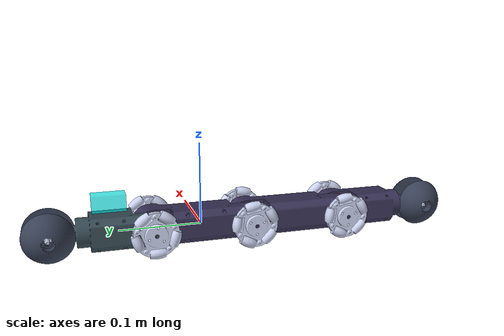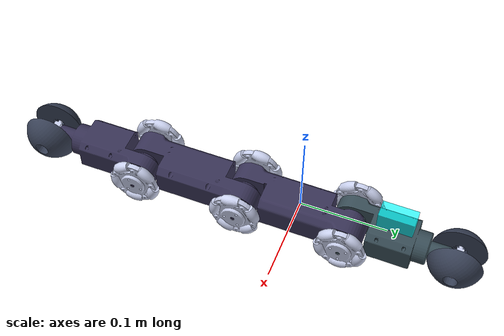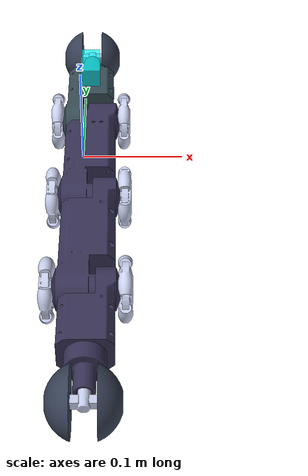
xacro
<?xml version="1.0" encoding="utf-8"?>

<robot xmlns:xacro="http://wiki.ros.org/xacro" name="pir-b-001">

  <!-- Include the robot kinematic and dynamic description file -->
  <xacro:include filename="PIR-B-ASSY-001-description.xacro"/>

  <!-- Include the camera -->
  <xacro:include filename="camera.xacro"/>

  <!-- Include the gazebo plugins file -->
  <xacro:include filename="PIR-B-ASSY-001-gazebo.xacro"/>

</robot>

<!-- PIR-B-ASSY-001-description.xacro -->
<pir-b-001 xmlns:xacro="http://wiki.ros.org/xacro" name="pir-b-001">

  <link name="base_footprint" />

  <link
    name="base_link">
    <inertial>
      <origin
        xyz="0.00464580299161508 -0.00157654781508274 1.29496402264534E-08"
        rpy="0 0 0" />
      <mass
        value="0.170619611327794" />
      <inertia
        ixx="8.87834221142331E-05"
        ixy="7.79394477944035E-08"
        ixz="9.12723410794375E-12"
        iyy="3.69411152186283E-05"
        iyz="-1.02575311402571E-11"
        izz="7.54787982319766E-05" />
    </inertial>
    <visual>
      <origin
        xyz="0 0 0"
        rpy="0 0 0" />
      <geometry>
        <mesh
          filename="package://pir-b-001/meshes/base_link.STL" />
      </geometry>
      <material
        name="">
        <color
          rgba="0.2156862745098 0.19607843137255 0.33333333333333 1" />
      </material>
    </visual>
    <collision>
      <origin
        xyz="0 0 0"
        rpy="0 0 0" />
      <geometry>
        <mesh
          filename="package://pir-b-001/meshes/base_link.STL" />
      </geometry>
    </collision>
  </link>
  <joint name="base_joint" type="fixed">
    <parent link="base_footprint"/>
    <child link="base_link"/>
  </joint>
  <link
    name="right_Link">
    <inertial>
      <origin
        xyz="-0.00184881111328208 -4.23784689099552E-07 0.0428862642303592"
        rpy="0 0 0" />
      <mass
        value="0.0937706135990428" />
      <inertia
        ixx="3.3058401223831E-05"
        ixy="-8.41485245226076E-11"
        ixz="-1.68708890047153E-07"
        iyy="2.54497427915133E-05"
        iyz="1.89306498798761E-10"
        izz="1.98487722559132E-05" />
    </inertial>
    <visual>
      <origin
        xyz="0 0 0"
        rpy="0 0 0" />
      <geometry>
        <mesh
          filename="package://pir-b-001/meshes/right_Link.STL" />
      </geometry>

  <material name="brown" >
    <color rgba="0.2156862745098 0.29607843137255 0.33333333333333 1" />
  </material>
    </visual>
    <collision>
      <origin
        xyz="0 0 0"
        rpy="0 0 0" />
      <geometry>
        <mesh
          filename="package://pir-b-001/meshes/right_Link.STL" />
      </geometry>
    </collision>
  </link>
  <joint
    name="right_Linkj"
    type="revolute">
    <origin
      xyz="-0.0014878 0.0595 0"
      rpy="1.57079632679489 0 -3.14159265358979" />
    <parent
      link="base_link" />
    <child
      link="right_Link" />
    <axis
      xyz="1 0 0" />
      <limit lower="-1.57" upper="1.57" effort="100" velocity="10"/>
  </joint>
  <link
    name="right_wheel1">
    <inertial>
      <origin
        xyz="-0.000152394722576409 -1.38777878078145E-17 0.00826667615289123"
        rpy="0 0 0" />
      <mass
        value="0.00397466978072404" />
      <inertia
        ixx="3.60918483675977E-07"
        ixy="1.65569978578215E-24"
        ixz="-5.54295173329271E-24"
        iyy="5.29262126321023E-07"
        iyz="-2.39172772821026E-13"
        izz="2.18039563551073E-07" />
    </inertial>
    <visual>
      <origin
        xyz="0 0 0"
        rpy="0 0 0" />
      <geometry>
        <mesh
          filename="package://pir-b-001/meshes/right_wheel1.STL" />
      </geometry>
      <material
        name="">
        <color
          rgba="0.792156862745098 0.819607843137255 0.933333333333333 1" />
      </material>
    </visual>
    <collision>
      <origin
        xyz="0 0 0"
        rpy="0 0 0" />
      <geometry>
        <mesh
          filename="package://pir-b-001/meshes/right_wheel1.STL" />
      </geometry>
    </collision>
  </link>
  <joint
    name="right_wheel1j"
    type="continuous">
    <origin
      xyz="-0.00749999999999901 0 0.120529810536102"
      rpy="3.14159265358979 0 3.14159265358979" />
    <parent
      link="right_Link" />
    <child
      link="right_wheel1" />
    <axis
      xyz="0 0 1" />
    <limit
      effort="3.5"
      velocity="10" />
  </joint>
  <link
    name="right_wheel">
    <inertial>
      <origin
        xyz="0 -9.80989718277203E-10 0.00057019000905606"
        rpy="0 0 0" />
      <mass
        value="0.06316999034176" />
      <inertia
        ixx="2.34601118841819E-05"
        ixy="6.34235569189726E-13"
        ixz="1.10459714329623E-15"
        iyy="1.31801476605567E-05"
        iyz="1.21434487375606E-10"
        izz="1.31800680409047E-05" />
    </inertial>
    <visual>
      <origin
        xyz="0 9.80989718277203E-10 0.00057019000905606"
        rpy="0 0 0" />
      <geometry>
        <mesh
          filename="package://pir-b-001/meshes/right_wheel.STL" />
      </geometry>
      <material
        name="">
        <color
          rgba="0.2156862745098 0.25 0.333333333333333 1" />
      </material>
    </visual>
    <collision>
      <origin
        xyz="0 9.80989718277203E-10 0.00057019000905606"
        rpy="0 0 0" />
      <geometry>
        <mesh
          filename="package://pir-b-001/meshes/right_wheel.STL" />
      </geometry>
    </collision>
  </link>
  <joint
    name="right_wheelj"
    type="continuous">
    <origin
      xyz="0 0 0"
      rpy="0 0 0" />
    <parent
      link="right_wheel1" />
    <child
      link="right_wheel" />
    <axis
      xyz="1 0 0" />
    <limit
      lower="0"
      upper="0"
      effort="0"
      velocity="0" />
  </joint>
  <link
    name="omni1">
    <inertial>
      <origin
        xyz="-0.00563003320638717 -2.34501937295545E-08 3.54608361008424E-08"
        rpy="0 0 0" />
      <mass
        value="0.0201689077901827" />
      <inertia
        ixx="2.89466199636895E-06"
        ixy="-9.5524341130118E-18"
        ixz="7.27101391902106E-16"
        iyy="1.56064663818156E-06"
        iyz="-2.24081755790126E-16"
        izz="1.5606466410806E-06" />
    </inertial>
    <visual>
      <origin
        xyz="0 0 0"
        rpy="0 0 0" />
      <geometry>
        <mesh
          filename="package://pir-b-001/meshes/omni1.STL" />
      </geometry>
      <material
        name="">
        <color
          rgba="0.792156862745098 0.819607843137255 0.933333333333333 1" />
      </material>
    </visual>
    <collision>
      <origin
        xyz="0 0 0"
        rpy="0 0 0" />
      <geometry>
        <mesh
          filename="package://pir-b-001/meshes/omni1.STL" />
      </geometry>
    </collision>
  </link>
  <joint
    name="omni1j"
    type="continuous">
    <origin
      xyz="-0.0489939 0 0"
      rpy="3.14159265358979 0 3.14159265358979" />
    <parent
      link="right_Link" />
    <child
      link="omni1" />
    <axis
      xyz="-1 0 0" />
    <limit
      effort="3.5"
      velocity="10" />
  </joint>
  <link
    name="omni11">
    <inertial>
      <origin
        xyz="0.00594999947873641 5.39957731304774E-11 -1.80231940483111E-11"
        rpy="0 0 0" />
      <mass
        value="0.0201140567593902" />
      <inertia
        ixx="2.89396036741548E-06"
        ixy="8.33888837112752E-17"
        ixz="7.38017089766643E-16"
        iyy="1.56026500386643E-06"
        iyz="7.65565755138745E-16"
        izz="1.56026500695539E-06" />
    </inertial>
    <visual>
      <origin
        xyz="0 0 0"
        rpy="0 0 0" />
      <geometry>
        <mesh
          filename="package://pir-b-001/meshes/omni11.STL" />
      </geometry>
      <material
        name="">
        <color
          rgba="0.792156862745098 0.819607843137255 0.933333333333333 1" />
      </material>
    </visual>
    <collision>
      <origin
        xyz="0 0 0"
        rpy="0 0 0" />
      <geometry>
        <mesh
          filename="package://pir-b-001/meshes/omni11.STL" />
      </geometry>
    </collision>
  </link>
  <joint
    name="omni11j"
    type="continuous">
    <origin
      xyz="0.032500000000001 0 0"
      rpy="3.14159265358979 0 3.14159265358979" />
    <parent
      link="right_Link" />
    <child
      link="omni11" />
    <axis
      xyz="-1 0 0" />
    <limit
      effort="3.5"
      velocity="10" />
  </joint>
  <link
    name="left_Link">
    <inertial>
      <origin
        xyz="-0.00158846965158471 1.46053958545445E-08 0.0622691284414876"
        rpy="0 0 0" />
      <mass
        value="0.167006805501782" />
      <inertia
        ixx="8.76796763617996E-05"
        ixy="-1.08530403468932E-11"
        ixz="6.66846868785724E-08"
        iyy="7.49199848156552E-05"
        iyz="-1.21830500956036E-11"
        izz="3.62401163602652E-05" />
    </inertial>
    <visual>
      <origin
        xyz="0 0 0"
        rpy="0 0 0" />
      <geometry>
        <mesh
          filename="package://pir-b-001/meshes/left_Link.STL" />
      </geometry>
      <material
        name="">
        <color
          rgba="0.2156862745098 0.19607843137255 0.33333333333333 1" />
      </material>
    </visual>
    <collision>
      <origin
        xyz="0 0 0"
        rpy="0 0 0" />
      <geometry>
        <mesh
          filename="package://pir-b-001/meshes/left_Link.STL" />
      </geometry>
    </collision>
  </link>
  <joint
    name="left_Linkj"
    type="revolute">
    <origin
      xyz="0.0109878 -0.0625 0"
      rpy="1.5707963267949 0 0" />
    <parent
      link="base_link" />
    <child
      link="left_Link" />
    <axis
      xyz="1 0 0" />
      <limit lower="-1.57" upper="1.57" effort="100" velocity="10"/>
  </joint>
  <link
    name="link3">
    <inertial>
      <origin
        xyz="0.00184881111328213 4.2378468910996E-07 0.0428862642303593"
        rpy="0 0 0" />
      <mass
        value="0.0937706135990428" />
      <inertia
        ixx="3.3058401223831E-05"
        ixy="-8.41485245171142E-11"
        ixz="1.68708890047147E-07"
        iyy="2.54497427915133E-05"
        iyz="-1.89306498798599E-10"
        izz="1.98487722559132E-05" />
    </inertial>
    <visual>
      <origin
        xyz="0 0 0"
        rpy="0 0 0" />
      <geometry>
        <mesh
          filename="package://pir-b-001/meshes/link3.STL" />
      </geometry>
      <material
        name="">
        <color
          rgba="0.2156862745098 0.19607843137255 0.33333333333333 1" />
      </material>
    </visual>
    <collision>
      <origin
        xyz="0 0 0"
        rpy="0 0 0" />
      <geometry>
        <mesh
          filename="package://pir-b-001/meshes/link3.STL" />
      </geometry>
    </collision>
  </link>
  <joint
    name="link3j"
    type="revolute">
    <origin
      xyz="0.0044878 0 0.122"
      rpy="0 0 3.14159265358979" />
    <parent
      link="left_Link" />
    <child
      link="link3" />
    <axis
      xyz="-1 0 0" />
    <limit lower="-1.57" upper="1.57" effort="100" velocity="10"/>
  </joint>
  <link
    name="left_wheel1">
    <inertial>
      <origin
        xyz="-0.000152394722576388 -1.73472347597681E-17 -0.00883686561678922"
        rpy="0 0 0" />
      <mass
        value="0.00397466978072403" />
      <inertia
        ixx="3.60918483675978E-07"
        ixy="1.40065332748047E-24"
        ixz="5.46219029424907E-24"
        iyy="5.29262126321023E-07"
        iyz="-2.39172773129062E-13"
        izz="2.18039563551071E-07" />
    </inertial>
    <visual>
      <origin
        xyz="0 0 0"
        rpy="0 0 0" />
      <geometry>
        <mesh
          filename="package://pir-b-001/meshes/left_wheel1.STL" />
      </geometry>
      <material
        name="">
        <color
          rgba="0.792156862745098 0.819607843137255 0.933333333333333 1" />
      </material>
    </visual>
    <collision>
      <origin
        xyz="0 0 0"
        rpy="0 0 0" />
      <geometry>
        <mesh
          filename="package://pir-b-001/meshes/left_wheel1.STL" />
      </geometry>
    </collision>
  </link>
  <joint
    name="left_wheel1j"
    type="continuous">
    <origin
      xyz="0.0075000000000011 0 0.1211"
      rpy="0 0 3.14159265358979" />
    <parent
      link="link3" />
    <child
      link="left_wheel1" />
    <axis
      xyz="0 0 -1" />
    <limit
      effort="3.5"
      velocity="10" />
  </joint>
  <link
    name="left_wheel">
    <inertial>
      <origin
        xyz="0 9.80989711338309E-10 5.4515819636336E-10"
        rpy="0 0 0" />
      <mass
        value="0.0631699903417599" />
      <inertia
        ixx="2.34601118841818E-05"
        ixy="-6.34235568100555E-13"
        ixz="-1.10459970680797E-15"
        iyy="1.31801476605566E-05"
        iyz="1.2143448738075E-10"
        izz="1.31800680409047E-05" />
    </inertial>
    <visual>
      <origin
        xyz="0 0 0"
        rpy="0 0 0" />
      <geometry>
        <mesh
          filename="package://pir-b-001/meshes/left_wheel.STL" />
      </geometry>
      <material
        name="">
        <color
          rgba="0.2156862745098 0.25 0.333333333333333 1" />
      </material>
    </visual>
    <collision>
      <origin
        xyz="0 0 0"
        rpy="0 0 0" />
      <geometry>
        <mesh
          filename="package://pir-b-001/meshes/left_wheel.STL" />
      </geometry>
    </collision>
  </link>
  <joint
    name="left_wheelj"
    type="continuous">
    <origin
      xyz="0 0 0"
      rpy="0 0 0" />
    <parent
      link="left_wheel1" />
    <child
      link="left_wheel" />
    <axis
      xyz="-1 0 0" />
    <limit
      lower="0"
      upper="0"
      effort="0"
      velocity="0" />
  </joint>
  <link
    name="omni3">
    <inertial>
      <origin
        xyz="-0.00906169875747201 9.99316115968263E-11 3.76969983006958E-12"
        rpy="0 0 0" />
      <mass
        value="0.0220741125393333" />
      <inertia
        ixx="2.90247191554529E-06"
        ixy="5.7152064424899E-16"
        ixz="2.06680343176959E-16"
        iyy="2.42265115370176E-06"
        iyz="3.86902451094229E-15"
        izz="2.42265115187895E-06" />
    </inertial>
    <visual>
      <origin
        xyz="0 0 0"
        rpy="0 0 0" />
      <geometry>
        <mesh
          filename="package://pir-b-001/meshes/omni3.STL" />
      </geometry>
      <material
        name="">
        <color
          rgba="0.792156862745098 0.819607843137255 0.933333333333333 1" />
      </material>
    </visual>
    <collision>
      <origin
        xyz="0 0 0"
        rpy="0 0 0" />
      <geometry>
        <mesh
          filename="package://pir-b-001/meshes/omni3.STL" />
      </geometry>
    </collision>
  </link>
  <joint
    name="omni3j"
    type="continuous">
    <origin
      xyz="-0.0325 0 0"
      rpy="0 0 3.14159265358979" />
    <parent
      link="link3" />
    <child
      link="omni3" />
    <axis
      xyz="-1 0 0" />
    <limit
      effort="3.5"
      velocity="10" />
  </joint>
  <link
    name="omni33">
    <inertial>
      <origin
        xyz="0.00594999949319272 -1.73031554362435E-12 2.26730509367279E-11"
        rpy="0 0 0" />
      <mass
        value="0.0201140568208348" />
      <inertia
        ixx="2.89396036823254E-06"
        ixy="2.0290847722318E-17"
        ixz="-2.04665204356956E-16"
        iyy="1.56026500633012E-06"
        iyz="7.85122891413274E-16"
        izz="1.56026500750324E-06" />
    </inertial>
    <visual>
      <origin
        xyz="0 0 0"
        rpy="0 0 0" />
      <geometry>
        <mesh
          filename="package://pir-b-001/meshes/omni33.STL" />
      </geometry>
      <material
        name="">
        <color
          rgba="0.792156862745098 0.819607843137255 0.933333333333333 1" />
      </material>
    </visual>
    <collision>
      <origin
        xyz="0 0 0"
        rpy="0 0 0" />
      <geometry>
        <mesh
          filename="package://pir-b-001/meshes/omni33.STL" />
      </geometry>
    </collision>
  </link>
  <joint
    name="omni33j"
    type="continuous">
    <origin
      xyz="0.049487800000001 0 0"
      rpy="0 0 3.14159265358979" />
    <parent
      link="link3" />
    <child
      link="omni33" />
    <axis
      xyz="-1 0 0" />
    <limit
      effort="3.5"
      velocity="10" />
  </joint>
  <link
    name="omni22">
    <inertial>
      <origin
        xyz="0.00594999951624568 -5.9256037576727E-12 3.98460431316749E-11"
        rpy="0 0 0" />
      <mass
        value="0.0201140568473286" />
      <inertia
        ixx="2.89396036649702E-06"
        ixy="5.90539573515621E-16"
        ixz="-5.22899163592507E-16"
        iyy="1.56026500335274E-06"
        iyz="3.29436237722969E-15"
        izz="1.56026500968033E-06" />
    </inertial>
    <visual>
      <origin
        xyz="0 0 0"
        rpy="0 0 0" />
      <geometry>
        <mesh
          filename="package://pir-b-001/meshes/omni22.STL" />
      </geometry>
      <material
        name="">
        <color
          rgba="0.792156862745098 0.819607843137255 0.933333333333333 1" />
      </material>
    </visual>
    <collision>
      <origin
        xyz="0 0 0"
        rpy="0 0 0" />
      <geometry>
        <mesh
          filename="package://pir-b-001/meshes/omni22.STL" />
      </geometry>
    </collision>
  </link>
  <joint
    name="omni22j"
    type="continuous">
    <origin
      xyz="-0.0449878 0 0"
      rpy="0 0 0" />
    <parent
      link="left_Link" />
    <child
      link="omni22" />
    <axis
      xyz="1 0 0" />
    <limit
      effort="3.5"
      velocity="10" />
  </joint>
  <link
    name="omni2">
    <inertial>
      <origin
        xyz="-0.00906169873200706 -2.22358936818878E-12 -1.69876057665164E-11"
        rpy="0 0 0" />
      <mass
        value="0.0220741125868307" />
      <inertia
        ixx="2.90247192013343E-06"
        ixy="8.096473822911E-17"
        ixz="-1.49131826695456E-16"
        iyy="2.42265115585034E-06"
        iyz="-2.80379249301921E-16"
        izz="2.42265115603564E-06" />
    </inertial>
    <visual>
      <origin
        xyz="0 0 0"
        rpy="0 0 0" />
      <geometry>
        <mesh
          filename="package://pir-b-001/meshes/omni2.STL" />
      </geometry>
      <material
        name="">
        <color
          rgba="0.792156862745098 0.819607843137255 0.933333333333333 1" />
      </material>
    </visual>
    <collision>
      <origin
        xyz="0 0 0"
        rpy="0 0 0" />
      <geometry>
        <mesh
          filename="package://pir-b-001/meshes/omni2.STL" />
      </geometry>
    </collision>
  </link>
  <joint
    name="omni2j"
    type="continuous">
    <origin
      xyz="0.037 0 0"
      rpy="0 0 0" />
    <parent
      link="left_Link" />
    <child
      link="omni2" />
    <axis
      xyz="1 0 0" />
    <limit
      effort="3.5"
      velocity="10" />
  </joint>

</pir-b-001>

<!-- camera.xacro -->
<robot xmlns:xacro="http://ros.org/wiki/xacro">

    <link name="camera_link">
        <inertial>
            <origin xyz="0 0 0" rpy="0 0 0"/>
            <mass value="0.1"/>
            <inertia ixx="0.001" ixy="0.0" ixz="0.0" iyy="0.001" iyz="0.0" izz="0.001"/>
        </inertial>
        <visual>
            <origin xyz="0 0 0" rpy="0 0 0"/>
            <geometry>
                <box size="0.04 0.02 0.02"/>
            </geometry>
            <material name="camera_color">
                <color rgba="0.0 1.0 1.0 0.7"/>
            </material>
        </visual>
        <collision>
            <origin xyz="0 0 0" rpy="0 0 0"/>
            <geometry>
                <box size="0.01 0.01 0.01"/>
            </geometry>
        </collision>
    </link>

    <joint name="camera_joint" type="fixed">
        <parent link="right_Link"/>
        <child link="camera_link"/>
        <origin xyz="-0.0075 0.035 0.05" rpy= "0 -1.57079632679 -1.57079632679" />
    </joint>

</robot>
